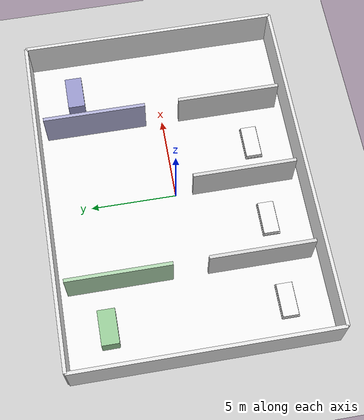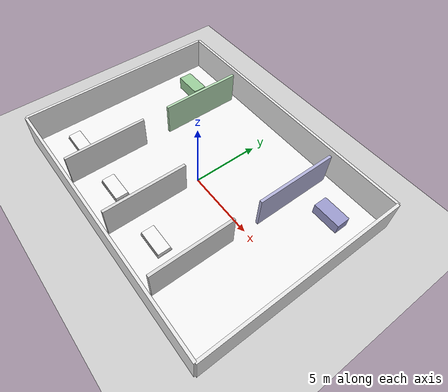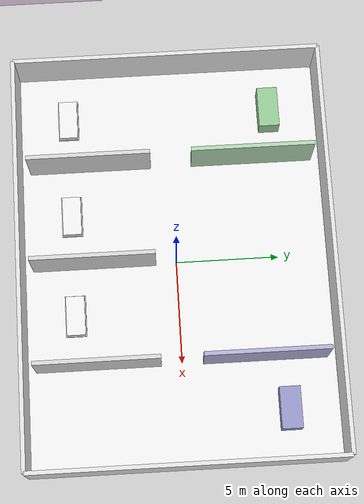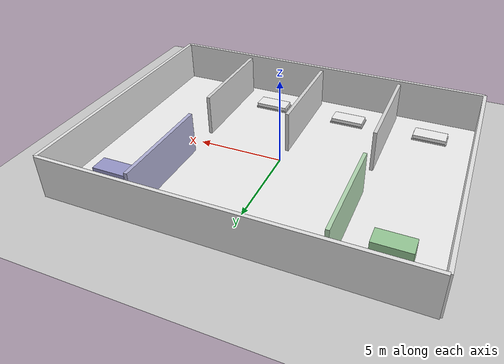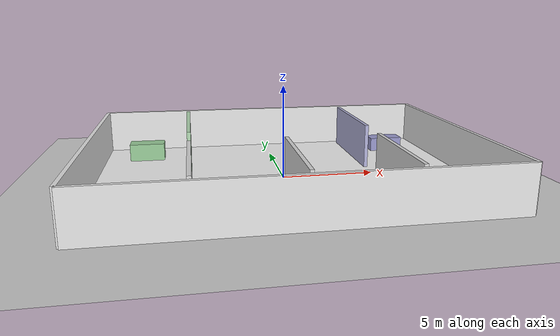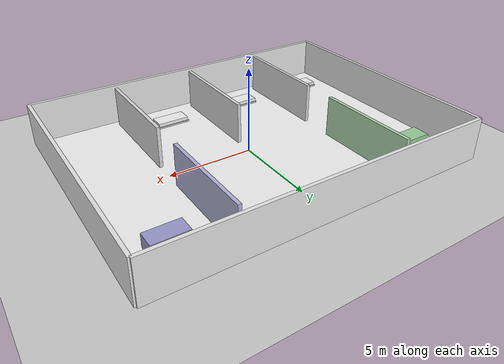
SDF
<?xml version="1.0"?>
<sdf version="1.6">
  <world name="hospital">

    <!-- Physics (optimized for slow computers) -->
    <physics type="ode">
      <max_step_size>0.003</max_step_size>
      <real_time_factor>1</real_time_factor>
      <real_time_update_rate>333</real_time_update_rate>
    </physics>

    <!-- Basic lighting -->
    <light name='sun' type='directional'>
      <cast_shadows>0</cast_shadows>
      <pose>0 0 10 0 0 0</pose>
      <diffuse>0.8 0.8 0.8 1</diffuse>
      <specular>0.2 0.2 0.2 1</specular>
      <direction>-0.5 0.1 -0.9</direction>
    </light>

    <!-- Ground Plane -->
    <include>
      <uri>model://ground_plane</uri>
    </include>

    <!-- ========== HOSPITAL FLOOR ========== -->
    <model name="floor">
      <static>true</static>
      <link name="link">
        <collision name="collision">
          <geometry>
            <box>
              <size>20 15 0.1</size>
            </box>
          </geometry>
        </collision>
        <visual name="visual">
          <geometry>
            <box>
              <size>20 15 0.1</size>
            </box>
          </geometry>
          <material>
            <ambient>0.95 0.95 0.95 1</ambient>
            <diffuse>0.95 0.95 0.95 1</diffuse>
          </material>
        </visual>
      </link>
    </model>

    <!-- ========== OUTER WALLS ========== -->
    <!-- North wall -->
    <model name="north_wall">
      <static>true</static>
      <pose>0 7.5 1.25 0 0 0</pose>
      <link name="link">
        <collision name="collision">
          <geometry>
            <box>
              <size>20 0.2 2.5</size>
            </box>
          </geometry>
        </collision>
        <visual name="visual">
          <geometry>
            <box>
              <size>20 0.2 2.5</size>
            </box>
          </geometry>
          <material>
            <ambient>0.9 0.9 0.9 1</ambient>
            <diffuse>0.9 0.9 0.9 1</diffuse>
          </material>
        </visual>
      </link>
    </model>

    <!-- South wall -->
    <model name="south_wall">
      <static>true</static>
      <pose>0 -7.5 1.25 0 0 0</pose>
      <link name="link">
        <collision name="collision">
          <geometry>
            <box>
              <size>20 0.2 2.5</size>
            </box>
          </geometry>
        </collision>
        <visual name="visual">
          <geometry>
            <box>
              <size>20 0.2 2.5</size>
            </box>
          </geometry>
          <material>
            <ambient>0.9 0.9 0.9 1</ambient>
            <diffuse>0.9 0.9 0.9 1</diffuse>
          </material>
        </visual>
      </link>
    </model>

    <!-- East wall -->
    <model name="east_wall">
      <static>true</static>
      <pose>10 0 1.25 0 0 0</pose>
      <link name="link">
        <collision name="collision">
          <geometry>
            <box>
              <size>0.2 15 2.5</size>
            </box>
          </geometry>
        </collision>
        <visual name="visual">
          <geometry>
            <box>
              <size>0.2 15 2.5</size>
            </box>
          </geometry>
          <material>
            <ambient>0.9 0.9 0.9 1</ambient>
            <diffuse>0.9 0.9 0.9 1</diffuse>
          </material>
        </visual>
      </link>
    </model>

    <!-- West wall -->
    <model name="west_wall">
      <static>true</static>
      <pose>-10 0 1.25 0 0 0</pose>
      <link name="link">
        <collision name="collision">
          <geometry>
            <box>
              <size>0.2 15 2.5</size>
            </box>
          </geometry>
        </collision>
        <visual name="visual">
          <geometry>
            <box>
              <size>0.2 15 2.5</size>
            </box>
          </geometry>
          <material>
            <ambient>0.9 0.9 0.9 1</ambient>
            <diffuse>0.9 0.9 0.9 1</diffuse>
          </material>
        </visual>
      </link>
    </model>

    <!-- ========== CORRIDOR WALLS ========== -->
    <!-- Main corridor runs East-West through center -->

    <!-- Room divider 1 (creates Room 101) -->
    <model name="divider_1">
      <static>true</static>
      <pose>-5 -4 1.25 0 0 0</pose>
      <link name="link">
        <collision name="collision">
          <geometry>
            <box>
              <size>0.2 6 2.5</size>
            </box>
          </geometry>
        </collision>
        <visual name="visual">
          <geometry>
            <box>
              <size>0.2 6 2.5</size>
            </box>
          </geometry>
          <material>
            <ambient>0.85 0.85 0.85 1</ambient>
            <diffuse>0.85 0.85 0.85 1</diffuse>
          </material>
        </visual>
      </link>
    </model>

    <!-- Room divider 2 (creates Room 102) -->
    <model name="divider_2">
      <static>true</static>
      <pose>0 -4 1.25 0 0 0</pose>
      <link name="link">
        <collision name="collision">
          <geometry>
            <box>
              <size>0.2 6 2.5</size>
            </box>
          </geometry>
        </collision>
        <visual name="visual">
          <geometry>
            <box>
              <size>0.2 6 2.5</size>
            </box>
          </geometry>
          <material>
            <ambient>0.85 0.85 0.85 1</ambient>
            <diffuse>0.85 0.85 0.85 1</diffuse>
          </material>
        </visual>
      </link>
    </model>

    <!-- Room divider 3 (creates Room 103) -->
    <model name="divider_3">
      <static>true</static>
      <pose>5 -4 1.25 0 0 0</pose>
      <link name="link">
        <collision name="collision">
          <geometry>
            <box>
              <size>0.2 6 2.5</size>
            </box>
          </geometry>
        </collision>
        <visual name="visual">
          <geometry>
            <box>
              <size>0.2 6 2.5</size>
            </box>
          </geometry>
          <material>
            <ambient>0.85 0.85 0.85 1</ambient>
            <diffuse>0.85 0.85 0.85 1</diffuse>
          </material>
        </visual>
      </link>
    </model>

    <!-- Pharmacy wall (top side) -->
    <model name="pharmacy_wall">
      <static>true</static>
      <pose>-5 4 1.25 0 0 0</pose>
      <link name="link">
        <collision name="collision">
          <geometry>
            <box>
              <size>0.2 6 2.5</size>
            </box>
          </geometry>
        </collision>
        <visual name="visual">
          <geometry>
            <box>
              <size>0.2 6 2.5</size>
            </box>
          </geometry>
          <material>
            <ambient>0.7 0.85 0.7 1</ambient>
            <diffuse>0.7 0.85 0.7 1</diffuse>
          </material>
        </visual>
      </link>
    </model>

    <!-- Lab wall -->
    <model name="lab_wall">
      <static>true</static>
      <pose>5 4 1.25 0 0 0</pose>
      <link name="link">
        <collision name="collision">
          <geometry>
            <box>
              <size>0.2 6 2.5</size>
            </box>
          </geometry>
        </collision>
        <visual name="visual">
          <geometry>
            <box>
              <size>0.2 6 2.5</size>
            </box>
          </geometry>
          <material>
            <ambient>0.7 0.7 0.85 1</ambient>
            <diffuse>0.7 0.7 0.85 1</diffuse>
          </material>
        </visual>
      </link>
    </model>

    <!-- ========== FURNITURE ========== -->

    <!-- Hospital Bed in Room 101 -->
    <model name="bed_101">
      <static>true</static>
      <pose>-7.5 -5 0.05 0 0 0</pose>
      <link name="link">
        <!-- Bed frame -->
        <collision name="frame_collision">
          <pose>0 0 0.35 0 0 0</pose>
          <geometry>
            <box>
              <size>2.0 1.0 0.1</size>
            </box>
          </geometry>
        </collision>
        <visual name="frame_visual">
          <pose>0 0 0.35 0 0 0</pose>
          <geometry>
            <box>
              <size>2.0 1.0 0.1</size>
            </box>
          </geometry>
          <material>
            <ambient>0.8 0.8 0.8 1</ambient>
            <diffuse>0.8 0.8 0.8 1</diffuse>
          </material>
        </visual>

        <!-- Mattress -->
        <visual name="mattress_visual">
          <pose>0 0 0.5 0 0 0</pose>
          <geometry>
            <box>
              <size>1.9 0.9 0.2</size>
            </box>
          </geometry>
          <material>
            <ambient>0.95 0.95 0.95 1</ambient>
            <diffuse>0.95 0.95 0.95 1</diffuse>
          </material>
        </visual>
      </link>
    </model>

    <!-- Hospital Bed in Room 102 -->
    <model name="bed_102">
      <static>true</static>
      <pose>-2.5 -5 0.05 0 0 0</pose>
      <link name="link">
        <collision name="frame_collision">
          <pose>0 0 0.35 0 0 0</pose>
          <geometry>
            <box>
              <size>2.0 1.0 0.1</size>
            </box>
          </geometry>
        </collision>
        <visual name="frame_visual">
          <pose>0 0 0.35 0 0 0</pose>
          <geometry>
            <box>
              <size>2.0 1.0 0.1</size>
            </box>
          </geometry>
          <material>
            <ambient>0.8 0.8 0.8 1</ambient>
            <diffuse>0.8 0.8 0.8 1</diffuse>
          </material>
        </visual>
        <visual name="mattress_visual">
          <pose>0 0 0.5 0 0 0</pose>
          <geometry>
            <box>
              <size>1.9 0.9 0.2</size>
            </box>
          </geometry>
          <material>
            <ambient>0.95 0.95 0.95 1</ambient>
            <diffuse>0.95 0.95 0.95 1</diffuse>
          </material>
        </visual>
      </link>
    </model>

    <!-- Hospital Bed in Room 103 -->
    <model name="bed_103">
      <static>true</static>
      <pose>2.5 -5 0.05 0 0 0</pose>
      <link name="link">
        <collision name="frame_collision">
          <pose>0 0 0.35 0 0 0</pose>
          <geometry>
            <box>
              <size>2.0 1.0 0.1</size>
            </box>
          </geometry>
        </collision>
        <visual name="frame_visual">
          <pose>0 0 0.35 0 0 0</pose>
          <geometry>
            <box>
              <size>2.0 1.0 0.1</size>
            </box>
          </geometry>
          <material>
            <ambient>0.8 0.8 0.8 1</ambient>
            <diffuse>0.8 0.8 0.8 1</diffuse>
          </material>
        </visual>
        <visual name="mattress_visual">
          <pose>0 0 0.5 0 0 0</pose>
          <geometry>
            <box>
              <size>1.9 0.9 0.2</size>
            </box>
          </geometry>
          <material>
            <ambient>0.95 0.95 0.95 1</ambient>
            <diffuse>0.95 0.95 0.95 1</diffuse>
          </material>
        </visual>
      </link>
    </model>

    <!-- Pharmacy Counter -->
    <model name="pharmacy_counter">
      <static>true</static>
      <pose>-7.5 5 0.05 0 0 0</pose>
      <link name="link">
        <collision name="collision">
          <pose>0 0 0.5 0 0 0</pose>
          <geometry>
            <box>
              <size>2.0 1.0 1.0</size>
            </box>
          </geometry>
        </collision>
        <visual name="visual">
          <pose>0 0 0.5 0 0 0</pose>
          <geometry>
            <box>
              <size>2.0 1.0 1.0</size>
            </box>
          </geometry>
          <material>
            <ambient>0.6 0.8 0.6 1</ambient>
            <diffuse>0.6 0.8 0.6 1</diffuse>
          </material>
        </visual>
      </link>
    </model>

    <!-- Lab Table -->
    <model name="lab_table">
      <static>true</static>
      <pose>7.5 5 0.05 0 0 0</pose>
      <link name="link">
        <collision name="collision">
          <pose>0 0 0.4 0 0 0</pose>
          <geometry>
            <box>
              <size>2.0 1.0 0.8</size>
            </box>
          </geometry>
        </collision>
        <visual name="visual">
          <pose>0 0 0.4 0 0 0</pose>
          <geometry>
            <box>
              <size>2.0 1.0 0.8</size>
            </box>
          </geometry>
          <material>
            <ambient>0.6 0.6 0.8 1</ambient>
            <diffuse>0.6 0.6 0.8 1</diffuse>
          </material>
        </visual>
      </link>
    </model>

  </world>
</sdf>
